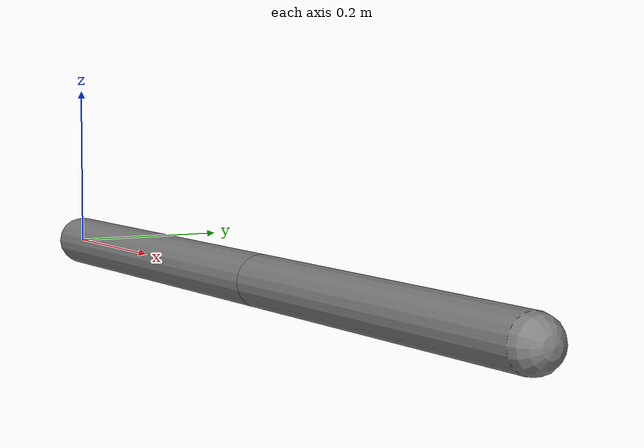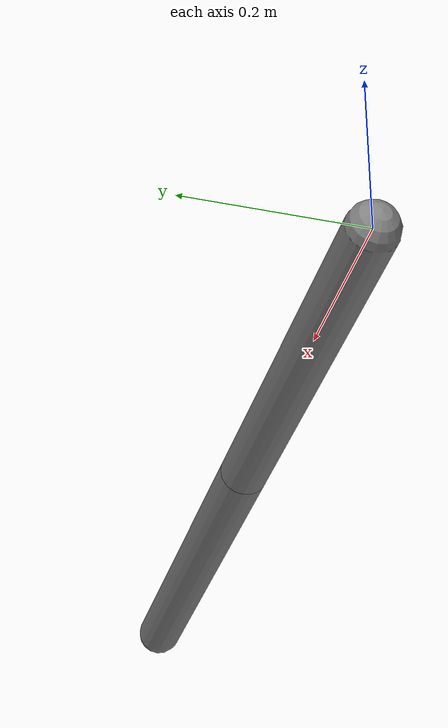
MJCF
<mujoco model="arm2d">

    <option gravity="0 0 0"/>

    <worldbody>

        <body name="link1" pos="0 0 0">

            <joint
                name="joint1"
                type="hinge"
                axis="0 0 1"/>

            <geom
                type="capsule"
                fromto="0 0 0 0.5 0 0"
                size="0.03"/>

            <body name="link2" pos="0.5 0 0">

                <joint
                    name="joint2"
                    type="hinge"
                    axis="0 0 1"/>

                <geom
                    type="capsule"
                    fromto="0 0 0 0.5 0 0"
                    size="0.03"/>

            </body>

        </body>

    </worldbody>

    <actuator>

        <motor joint="joint1"/>
        <motor joint="joint2"/>

    </actuator>

</mujoco>
